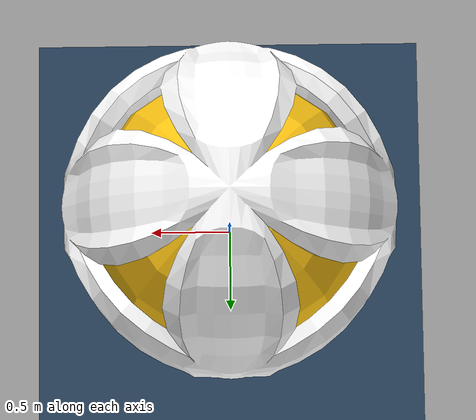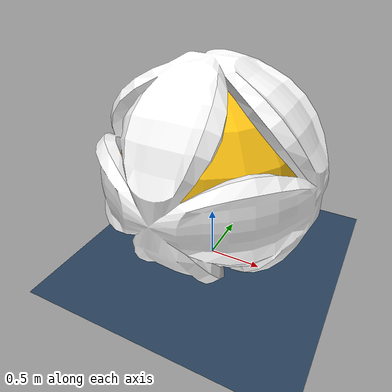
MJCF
<!-- 滚球测试场景：单独验证滚球物理行为。 -->
<mujoco model="rollball test">
  <!-- 编译器设置：角度单位为弧度，网格目录指向 meshes。 -->
  <compiler angle="radian" meshdir="assets" texturedir="assets" autolimits="true"/>

  <!-- 全局物理选项：接触锥、积分比率等。 -->
  <option timestep="0.01" gravity="0 0 -9.81"/>

  <!-- 可视化渲染参数。 -->
  <visual>
    <headlight diffuse="0.6 0.6 0.6" ambient="0.3 0.3 0.3" specular="0 0 0"/>
    <rgba haze="0.15 0.25 0.35 1"/>
    <global azimuth="120" elevation="-20"/>
  </visual>

  <!-- 场景统计与相机范围参数。 -->
  <statistic center="0 0 1" extent="3"/>

  <!-- 资源定义：网格、纹理、材质与高度场。 -->
  <asset>
    <!-- 地面纹理 -->
    <texture type="skybox" builtin="gradient" rgb1="0.3 0.5 0.7" rgb2="0 0 0" width="512" height="3072"/>
    <texture type="2d" name="groundplane" builtin="checker" mark="edge" rgb1="0.2 0.3 0.4" rgb2="0.1 0.2 0.3"
      markrgb="0.8 0.8 0.8" width="300" height="300"/>
    <material name="groundplane" texture="groundplane" texuniform="true" texrepeat="5 5" reflectance="0.2"/>

    <!-- 滚球纹理 -->
    <texture type="2d" colorspace="sRGB" name="ball01" file="ball01.png"/>
    <texture type="2d" colorspace="linear" name="ball01_ro" file="ball01_ro.png"/>

    <!-- 滚球材质 -->
    <material name="MI_ROLLBALL" rgba="1 1 1 1" reflectance="0.5" metallic="0.20000000298023224" roughness="1.0">
      <layer texture="ball01" role="rgb"/>
      <layer texture="ball01_ro" role="orm"/>
    </material>
    <material name="MI_gold" rgba="1.0 0.7726222276687622 0.06890170276165009 1.0" reflectance="0.5" metallic="1.0" roughness="0.15000000596046448"/>

    <!-- 滚球网格 -->
    <mesh class="visual" name="V_ROLLBALL" file="V_ROLLBALL.obj"/>
    <mesh class="visual" name="V_ROLLBALL_in" file="V_ROLLBALL_in.obj"/>
  </asset>

  <!-- 默认属性模板：几何、关节、电机共享参数。 -->
  <default>
    <default class="visual">
      <geom type="mesh" contype="0" conaffinity="0" group="2" density="0"/>
    </default>
    <default class="collision">
      <geom type="mesh" rgba="1 1 1 1" group="3" contype="1" conaffinity="1"/>
      <default class="C_ROLLBALL">
        <geom type="sphere" rgba="1 1 1 1" size="0.375" quat="1.0 0.0 0.0 0.0" pos="0.0 0.0 0.0" density="1000.0"/>
      </default>
    </default>
  </default>

  <!-- 世界坐标系实体：滚球测试场景。 -->
  <worldbody>
    <light pos="0 0 3" dir="0 0 -1" directional="true"/>
    <!-- 地面碰撞体：提供机器人足底接触平面。 -->
    <geom name="ground" size="5 5 0.05" type="plane" material="groundplane"/>

    <!-- 滚球初始高度 1 米。 -->
    <body name="B_rollball" pos="0.0 0.0 1.0">
      <freejoint/>
      <geom class="C_ROLLBALL"/>
      <geom class="visual" mesh="V_ROLLBALL" pos="0.0 0.0 0.0" quat="0.5000000596046448 -0.5 0.5 0.4999999403953552" material="MI_ROLLBALL"/>
      <geom class="visual" mesh="V_ROLLBALL_in" pos="0.0 0.0 0.0" quat="1.0 0.0 0.0 0.0" material="MI_gold"/>
    </body>
  </worldbody>
</mujoco>
